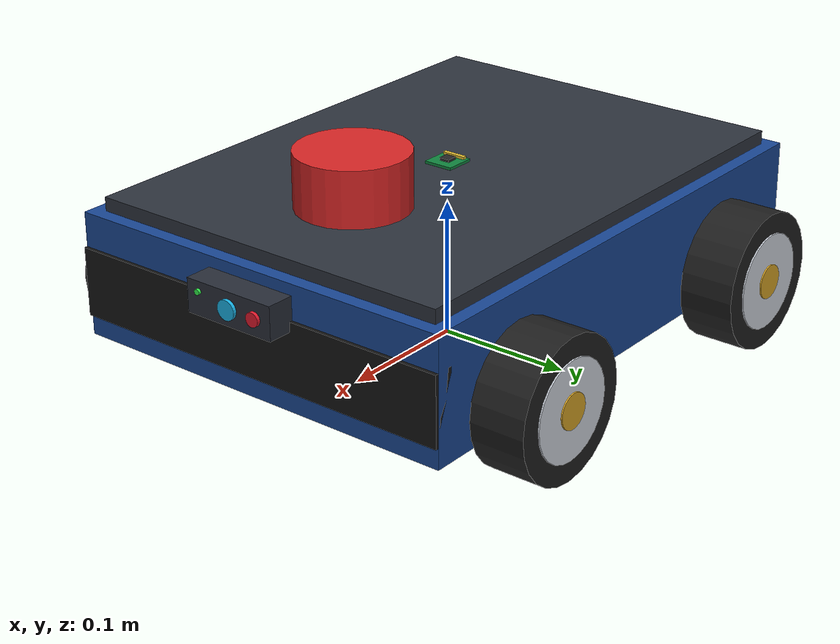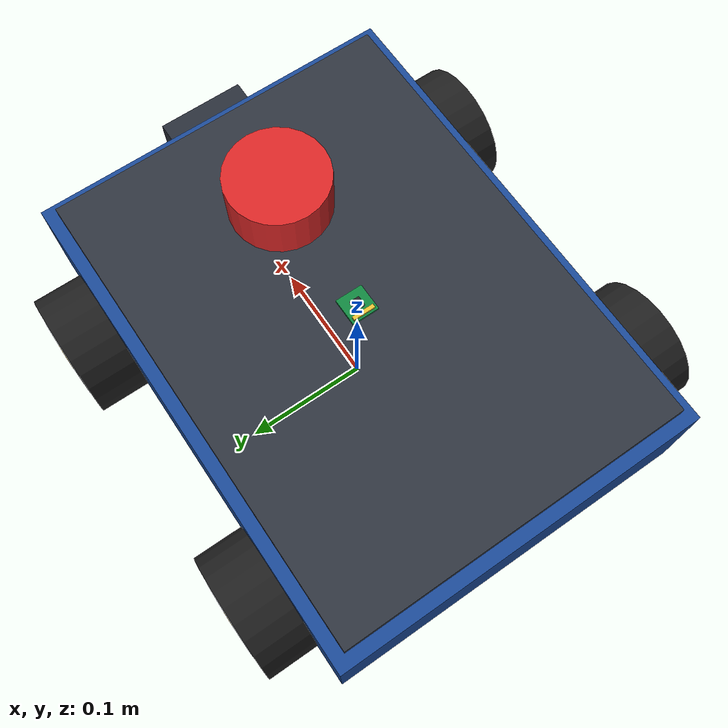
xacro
<?xml version="1.0"?>
<robot xmlns:xacro="http://www.ros.org/wiki/xacro" name="four_wheel_robot">

  <!-- 1. Robot Parameters and Dimensions                                   -->
  <xacro:property name="chassis_length" value="0.40"/>
  <xacro:property name="chassis_width"  value="0.30"/>
  <xacro:property name="chassis_height" value="0.10"/>
  <xacro:property name="chassis_mass"   value="4.0"/>

  <xacro:property name="wheel_radius"   value="0.05"/>
  <xacro:property name="wheel_width"    value="0.04"/>
  <xacro:property name="wheel_mass"     value="0.4"/>

  <!-- Wheel Offsets -->
  <xacro:property name="wheel_x_offset" value="0.12"/>
  <xacro:property name="wheel_y_offset" value="0.17"/>
  <xacro:property name="wheel_z_offset" value="0.0"/>

  <!-- PI Constant -->
  <xacro:property name="PI" value="3.14159265359"/>

  <!-- 2. Inertial Calculation Macros (For Gazebo Physics and Simulation)   -->
  <xacro:macro name="box_inertia" params="m l w h">
    <inertial>
      <mass value="${m}"/>
      <inertia ixx="${(m/12.0) * (w*w + h*h)}" ixy="0.0" ixz="0.0"
               iyy="${(m/12.0) * (l*l + h*h)}" iyz="0.0"
               izz="${(m/12.0) * (l*l + w*w)}"/>
    </inertial>
  </xacro:macro>

  <xacro:macro name="cylinder_inertia" params="m r h">
    <inertial>
      <mass value="${m}"/>
      <inertia ixx="${(m/12.0) * (3*r*r + h*h)}" ixy="0.0" ixz="0.0"
               iyy="${(m/12.0) * (3*r*r + h*h)}" iyz="0.0"
               izz="${(m/2.0) * (r*r)}"/>
    </inertial>
  </xacro:macro>

  <!-- 3. Materials / Colors (High-Detail Photorealistic Aesthetics)        -->
  <!-- Chassis Materials -->
  <material name="chassis_metal_blue">
    <color rgba="0.10 0.28 0.58 1.0"/> <!-- Metallic Sapphire Blue -->
  </material>

  <material name="carbon_top_deck">
    <color rgba="0.18 0.20 0.24 1.0"/> <!-- Carbon Fiber / Dark Titanium -->
  </material>

  <material name="bumper_matte_black">
    <color rgba="0.08 0.08 0.08 1.0"/> <!-- Tough Bumper Black -->
  </material>

  <!-- Wheel Materials -->
  <material name="tire_rubber_black">
    <color rgba="0.12 0.12 0.12 1.0"/> <!-- Matte Rubber Tire -->
  </material>

  <material name="wheel_alloy_silver">
    <color rgba="0.82 0.84 0.88 1.0"/> <!-- Brushed Aluminum Rim -->
  </material>

  <material name="wheel_hub_gold">
    <color rgba="0.85 0.65 0.15 1.0"/> <!-- Center Hub Nut Accent -->
  </material>

  <!-- LiDAR Sensor Materials -->
  <material name="lidar_color">
    <color rgba="0.85 0.15 0.15 1.0"/> <!-- Red -->
  </material>

  <material name="lidar_base_black">
    <color rgba="0.12 0.12 0.14 1.0"/> <!-- Anodized Black Base -->
  </material>

  <material name="lidar_optical_crimson">
    <color rgba="0.88 0.10 0.18 0.95"/> <!-- Optical Red Laser Turret -->
  </material>

  <material name="lidar_top_cap">
    <color rgba="0.05 0.05 0.05 1.0"/> <!-- Glossy Protective Cap -->
  </material>

  <!-- Camera Sensor Materials -->
  <material name="camera_casing_grey">
    <color rgba="0.16 0.18 0.22 1.0"/> <!-- Anodized Aluminum Casing -->
  </material>

  <material name="camera_lens_cyan">
    <color rgba="0.10 0.70 0.90 1.0"/> <!-- Optical Glass Lens -->
  </material>

  <material name="status_led_green">
    <color rgba="0.20 0.95 0.30 1.0"/> <!-- Power LED Indicator -->
  </material>

  <!-- IMU Sensor Materials -->
  <material name="imu_pcb_emerald">
    <color rgba="0.06 0.52 0.24 1.0"/> <!-- Classic Circuit Board Green -->
  </material>

  <material name="imu_chip_black">
    <color rgba="0.15 0.15 0.15 1.0"/> <!-- MEMS IC Microchip -->
  </material>

  <material name="imu_pin_gold">
    <color rgba="0.90 0.75 0.20 1.0"/> <!-- Gold-Plated Header Pins -->
  </material>

  <!-- 4. Base Footprint (Ground Projection Link)                           -->
  <link name="base_footprint"/>

  <joint name="base_footprint_joint" type="fixed">
    <parent link="base_footprint"/>
    <child link="base_link"/>
    <origin xyz="0.0 0.0 ${wheel_radius}" rpy="0 0 0"/>
  </joint>

  <!-- 5. Base Link / Chassis (Multi-Deck Robot Architecture)               -->
  <link name="base_link">
    <!-- 5A. Main Monocoque Chassis -->
    <visual>
      <origin xyz="0.0 0.0 0.025" rpy="0 0 0"/>
      <geometry>
        <box size="${chassis_length} ${chassis_width} 0.09"/>
      </geometry>
      <material name="chassis_metal_blue"/>
    </visual>

    <!-- 5B. Top Equipment Deck Plate -->
    <visual>
      <origin xyz="0.0 0.0 0.075" rpy="0 0 0"/>
      <geometry>
        <box size="${chassis_length - 0.02} ${chassis_width - 0.02} 0.01"/>
      </geometry>
      <material name="carbon_top_deck"/>
    </visual>

    <!-- 5C. Front Skid Bumper -->
    <visual>
      <origin xyz="${chassis_length/2 - 0.005} 0.0 0.02" rpy="0 0 0"/>
      <geometry>
        <box size="0.015 ${chassis_width} 0.05"/>
      </geometry>
      <material name="bumper_matte_black"/>
    </visual>

    <!-- Collision Geometry (Single Unified Bounding Box) -->
    <collision>
      <origin xyz="0.0 0.0 0.03" rpy="0 0 0"/>
      <geometry>
        <box size="${chassis_length} ${chassis_width} ${chassis_height}"/>
      </geometry>
    </collision>
    <xacro:box_inertia m="${chassis_mass}" l="${chassis_length}" w="${chassis_width}" h="${chassis_height}"/>
  </link>

  <!-- 6. Wheel Macro (Sports Rim Alloy + Rubber Tire)                      -->
  <xacro:macro name="wheel" params="prefix x_reflect y_reflect">
    <link name="${prefix}_wheel_link">
      <!-- 6A. Outer Rubber Tire -->
      <visual>
        <origin xyz="0 0 0" rpy="${PI/2} 0 0"/>
        <geometry>
          <cylinder radius="${wheel_radius}" length="${wheel_width}"/>
        </geometry>
        <material name="tire_rubber_black"/>
      </visual>

      <!-- 6B. Brushed Aluminum Alloy Rim -->
      <visual>
        <origin xyz="0 0 0" rpy="${PI/2} 0 0"/>
        <geometry>
          <cylinder radius="${wheel_radius * 0.70}" length="${wheel_width + 0.002}"/>
        </geometry>
        <material name="wheel_alloy_silver"/>
      </visual>

      <!-- 6C. Center Hubcap Accent -->
      <visual>
        <origin xyz="0 0 0" rpy="${PI/2} 0 0"/>
        <geometry>
          <cylinder radius="${wheel_radius * 0.25}" length="${wheel_width + 0.004}"/>
        </geometry>
        <material name="wheel_hub_gold"/>
      </visual>

      <collision>
        <origin xyz="0 0 0" rpy="${PI/2} 0 0"/>
        <geometry>
          <cylinder radius="${wheel_radius}" length="${wheel_width}"/>
        </geometry>
      </collision>
      <xacro:cylinder_inertia m="${wheel_mass}" r="${wheel_radius}" h="${wheel_width}"/>
    </link>

    <joint name="${prefix}_wheel_joint" type="continuous">
      <parent link="base_link"/>
      <child link="${prefix}_wheel_link"/>
      <origin xyz="${x_reflect * wheel_x_offset} ${y_reflect * wheel_y_offset} ${wheel_z_offset}" rpy="0 0 0"/>
      <axis xyz="0 1 0"/>
    </joint>
  </xacro:macro>

  <!-- Instantiate the 4 Wheels -->
  <!-- Front Left -->
  <xacro:wheel prefix="front_left"  x_reflect="1"  y_reflect="1"/>
  <!-- Front Right -->
  <xacro:wheel prefix="front_right" x_reflect="1"  y_reflect="-1"/>
  <!-- Rear Left -->
  <xacro:wheel prefix="rear_left"   x_reflect="-1" y_reflect="1"/>
  <!-- Rear Right -->
  <xacro:wheel prefix="rear_right"  x_reflect="-1" y_reflect="-1"/>

  <!-- 7. Sensors (Realistic RPLiDAR Puck, Vision Camera & IMU PCB)         -->

  <!-- 7A. 2D LiDAR Sensor (Mounted flush on top surface of chassis - Z = 0.08 + 0.02 = 0.10m) -->
  <link name="lidar_link">
    <visual>
      <origin xyz="0 0 0" rpy="0 0 0"/>
      <geometry>
        <cylinder radius="0.04" length="0.04"/>
      </geometry>
      <material name="lidar_color"/>
    </visual>
    <collision>
      <origin xyz="0 0 0" rpy="0 0 0"/>
      <geometry>
        <cylinder radius="0.04" length="0.04"/>
      </geometry>
    </collision>
    <xacro:cylinder_inertia m="0.15" r="0.04" h="0.04"/>
  </link>

  <joint name="lidar_joint" type="fixed">
    <parent link="base_link"/>
    <child link="lidar_link"/>
    <origin xyz="0.10 0.0 0.10" rpy="0 0 0"/>
  </joint>

  <!-- 7B. Front Camera (RealSense-Style Dual Optical Sensor) -->
  <link name="camera_link">
    <!-- Camera Body Casing -->
    <visual>
      <origin xyz="0.01 0 0" rpy="0 0 0"/>
      <geometry>
        <box size="0.02 0.07 0.024"/>
      </geometry>
      <material name="camera_casing_grey"/>
    </visual>

    <!-- Optical Glass Lens (Center) -->
    <visual>
      <origin xyz="0.021 0.0 0" rpy="0 ${PI/2} 0"/>
      <geometry>
        <cylinder radius="0.007" length="0.003"/>
      </geometry>
      <material name="camera_lens_cyan"/>
    </visual>

    <!-- IR / Secondary Lens -->
    <visual>
      <origin xyz="0.021 0.022 0" rpy="0 ${PI/2} 0"/>
      <geometry>
        <cylinder radius="0.005" length="0.003"/>
      </geometry>
      <material name="lidar_optical_crimson"/>
    </visual>

    <!-- Power Indicator LED -->
    <visual>
      <origin xyz="0.021 -0.025 0.005" rpy="0 ${PI/2} 0"/>
      <geometry>
        <cylinder radius="0.002" length="0.002"/>
      </geometry>
      <material name="status_led_green"/>
    </visual>

    <collision>
      <origin xyz="0.01 0 0" rpy="0 0 0"/>
      <geometry>
        <box size="0.02 0.07 0.024"/>
      </geometry>
    </collision>
    <xacro:box_inertia m="0.05" l="0.02" w="0.07" h="0.024"/>
  </link>

  <joint name="camera_joint" type="fixed">
    <parent link="base_link"/>
    <child link="camera_link"/>
    <origin xyz="0.20 0.0 0.05" rpy="0 0 0"/>
  </joint>

  <!-- Standard ROS Camera Optical Frame (Z forward, X right, Y down) -->
  <link name="camera_optical_link"/>

  <joint name="camera_optical_joint" type="fixed">
    <parent link="camera_link"/>
    <child link="camera_optical_link"/>
    <origin xyz="0 0 0" rpy="${-PI/2} 0 ${-PI/2}"/>
  </joint>

  <!-- 7C. IMU Sensor Link (MPU6050 / BNO055 Breakout Board) -->
  <link name="imu_link">
    <!-- PCB Substrate -->
    <visual>
      <origin xyz="0 0 0.001" rpy="0 0 0"/>
      <geometry>
        <box size="0.022 0.022 0.002"/>
      </geometry>
      <material name="imu_pcb_emerald"/>
    </visual>

    <!-- Microcontroller / MEMS IC Chip -->
    <visual>
      <origin xyz="0 0 0.003" rpy="0 0 0"/>
      <geometry>
        <box size="0.008 0.008 0.002"/>
      </geometry>
      <material name="imu_chip_black"/>
    </visual>

    <!-- Gold Pin Headers -->
    <visual>
      <origin xyz="-0.008 0 0.003" rpy="0 0 0"/>
      <geometry>
        <box size="0.003 0.018 0.002"/>
      </geometry>
      <material name="imu_pin_gold"/>
    </visual>

    <collision>
      <origin xyz="0 0 0.001" rpy="0 0 0"/>
      <geometry>
        <box size="0.022 0.022 0.002"/>
      </geometry>
    </collision>
    <xacro:box_inertia m="0.01" l="0.022" w="0.022" h="0.002"/>
  </link>

  <joint name="imu_joint" type="fixed">
    <parent link="base_link"/>
    <child link="imu_link"/>
    <origin xyz="0.0 0.0 0.08" rpy="0 0 0"/>
  </joint>

  <!-- 8. Gazebo Simulation Tags and Plugins                                -->
  <xacro:include filename="mobile_robot_gazebo.xacro"/>

  <!-- 9. ros2_control and Transmissions                                    -->
  <xacro:include filename="ros2_control.xacro"/>
  <xacro:include filename="transmission.xacro"/>

</robot>
